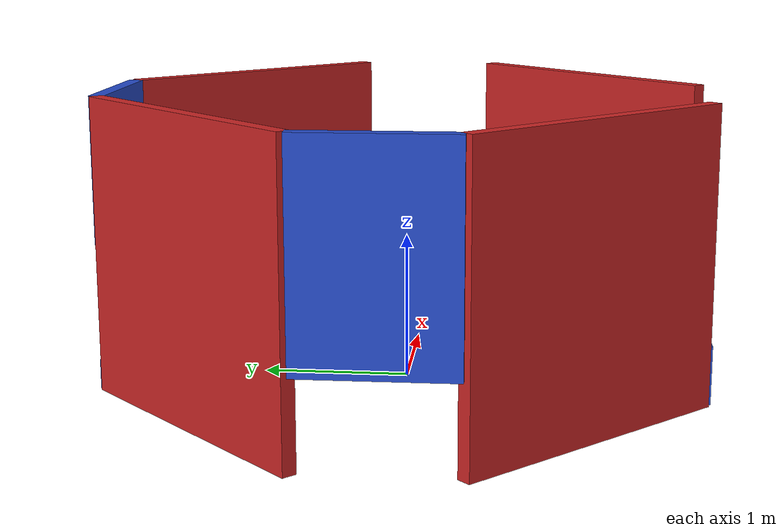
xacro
<?xml version="1.0"?>
<robot xmlns:xacro="http://www.ros.org/wiki/xacro"  name="scene">
    <xacro:property name="wall_length" value="1" />
    <xacro:property name="wall_thickness" value="0.1" />
    <xacro:property name="wall_height" value="2" />
    <xacro:property name="wall_mass" value="10" />
    <xacro:property name="wall_mass" value="10" />

    <xacro:property name="wall2_length" value="${1.5*1.414}" />

    <xacro:property name="wall_distance" value="2" />

    <xacro:property name="doore_height" value="0" />

    <xacro:property name="doors_bottom" value="0.4" />

    <xacro:property name="doorw_height" value="0.6" />

    <xacro:property name="doorn_height" value="1" />
    <xacro:property name="doorn_bottom" value="0.2" />

    <xacro:include filename="colours.xacro" />
    <xacro:include filename="inertial.xacro" />
    <xacro:include filename="gazebo.xacro" />
    <xacro:include filename="scene_core.xacro" />
</robot>

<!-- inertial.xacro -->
<robot xmlns:xacro="http://www.ros.org/wiki/xacro" >
    <!-- Specify some standard inertial calculations
         https://en.wikipedia.org/wiki/List_of_moments_of_inertia
         These make use of xacro's mathematical functionality -->
    <xacro:macro name="inertial_sphere" params="mass radius *origin">
        <inertial>
            <xacro:insert_block name="origin"/>
            <mass value="${mass}" />
            <inertia ixx="${(2/5) * mass * (radius*radius)}" ixy="0.0" ixz="0.0"
                    iyy="${(2/5) * mass * (radius*radius)}" iyz="0.0"
                    izz="${(2/5) * mass * (radius*radius)}" />
        </inertial>
    </xacro:macro>

    <xacro:macro name="inertial_box" params="mass x y z *origin">
        <inertial>
            <xacro:insert_block name="origin"/>
            <mass value="${mass}" />
            <inertia ixx="${(1/12) * mass * (y*y+z*z)}" ixy="0.0" ixz="0.0"
                    iyy="${(1/12) * mass * (x*x+z*z)}" iyz="0.0"
                    izz="${(1/12) * mass * (x*x+y*y)}" />
        </inertial>
    </xacro:macro>

    <xacro:macro name="inertial_cylinder" params="mass length radius *origin">
        <inertial>
            <xacro:insert_block name="origin"/>
            <mass value="${mass}" />
            <inertia ixx="${(1/12) * mass * (3*radius*radius + length*length)}"
                ixy="0.0" ixz="0.0"
                iyy="${(1/12) * mass * (3*radius*radius + length*length)}"
                iyz="0.0" izz="${(1/2) * mass * (radius*radius)}" />
        </inertial>
    </xacro:macro>
</robot>

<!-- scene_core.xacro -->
<robot xmlns:xacro="http://www.ros.org/wiki/xacro">

    <link name="base_link">
    </link>

    <joint name="wall_joint_se" type="fixed">
        <parent link="base_link"/>
        <child link="wall_se"/>
        <origin xyz="${1.25} -${1.25} ${wall_height/2}" rpy="0 0 ${pi/4}"/>
    </joint>
    <link name="wall_se">
        <visual>
            <origin xyz="0 0 0"/>
            <geometry>
                <box size="${wall2_length} ${wall_thickness} ${wall_height}"/>
            </geometry>
            <material name="red"/>
        </visual>
        <collision>
            <origin xyz="0 0 0"/>
            <geometry>
                <box size="${wall2_length} ${wall_thickness} ${wall_height}"/>
            </geometry>
         </collision>
        <xacro:inertial_box mass="${wall_mass}" x="${wall2_length}" y="${wall_thickness}" z="${wall_height}">
            <origin xyz="0 0 0"/>
        </xacro:inertial_box>
    </link>

    <joint name="wall_joint_s" type="fixed">
        <parent link="base_link"/>
        <child link="wall_s"/>
        <origin xyz="0 -${wall_distance} ${doors_bottom/2}" rpy="0 0 0"/>
    </joint>
    <link name="wall_s">
        <visual>
            <origin xyz="0 0 0"/>
            <geometry>
                <box size="${wall_length} ${wall_thickness} ${doors_bottom}"/>
            </geometry>
            <material name="blue"/>
        </visual>
        <collision>
            <origin xyz="0 0 0"/>
            <geometry>
                <box size="${wall_length} ${wall_thickness} ${doors_bottom}"/>
            </geometry>
         </collision>
        <xacro:inertial_box mass="${wall_mass}" x="${wall_length}" y="${wall_thickness}" z="${doors_bottom}">
            <origin xyz="0 0 0"/>
        </xacro:inertial_box>
    </link>

    <joint name="wall_joint_ne" type="fixed">
        <parent link="base_link"/>
        <child link="wall_ne"/>
        <origin xyz="${1.25} ${1.25} ${wall_height/2}" rpy="0 0 -${pi/4}"/>
    </joint>
    <link name="wall_ne">
        <visual>
            <origin xyz="0 0 0"/>
            <geometry>
                <box size="${wall2_length} ${wall_thickness} ${wall_height}"/>
            </geometry>
            <material name="red"/>
        </visual>
        <collision>
            <origin xyz="0 0 0"/>
            <geometry>
                <box size="${wall2_length} ${wall_thickness} ${wall_height}"/>
            </geometry>
         </collision>
        <xacro:inertial_box mass="${wall_mass}" x="${wall2_length}" y="${wall_thickness}" z="${wall_height}">
            <origin xyz="0 0 0"/>
        </xacro:inertial_box>
    </link>

    <joint name="wall_joint_sw" type="fixed">
        <parent link="base_link"/>
        <child link="wall_sw"/>
        <origin xyz="-${1.25} -${1.25} ${wall_height/2}" rpy="0 0 -${pi/4}"/>
    </joint>
    <link name="wall_sw">
        <visual>
            <origin xyz="0 0 0"/>
            <geometry>
                <box size="${wall2_length} ${wall_thickness} ${wall_height}"/>
            </geometry>
            <material name="red"/>
        </visual>
        <collision>
            <origin xyz="0 0 0"/>
            <geometry>
                <box size="${wall2_length} ${wall_thickness} ${wall_height}"/>
            </geometry>
         </collision>
        <xacro:inertial_box mass="${wall_mass}" x="${wall2_length}" y="${wall_thickness}" z="${wall_height}">
            <origin xyz="0 0 0"/>
        </xacro:inertial_box>
    </link>

    <joint name="wall_joint_nb" type="fixed">
        <parent link="base_link"/>
        <child link="wall_nb"/>
        <origin xyz="0 ${wall_distance} ${doorn_bottom/2}" rpy="0 0 0"/>
    </joint>
    <link name="wall_nb">
        <visual>
            <origin xyz="0 0 0"/>
            <geometry>
                <box size="${wall_length} ${wall_thickness} ${doorn_bottom}"/>
            </geometry>
            <material name="blue"/>
        </visual>
        <collision>
            <origin xyz="0 0 0"/>
            <geometry>
                <box size="${wall_length} ${wall_thickness} ${doorn_bottom}"/>
            </geometry>
         </collision>
        <xacro:inertial_box mass="${wall_mass}" x="${wall_length}" y="${wall_thickness}" z="${doorn_bottom}">
            <origin xyz="0 0 0"/>
        </xacro:inertial_box>
    </link>

    <joint name="wall_joint_nt" type="fixed">
        <parent link="base_link"/>
        <child link="wall_nt"/>
        <origin xyz="0 ${wall_distance} ${(wall_height - doorn_height)/2 + doorn_height}" rpy="0 0 0"/>
    </joint>
    <link name="wall_nt">
        <visual>
            <origin xyz="0 0 0"/>
            <geometry>
                <box size="${wall_length} ${wall_thickness} ${wall_height - doorn_height}"/>
            </geometry>
            <material name="blue"/>
        </visual>
        <collision>
            <origin xyz="0 0 0"/>
            <geometry>
                <box size="${wall_length} ${wall_thickness} ${wall_height - doorn_height}"/>
            </geometry>
         </collision>
        <xacro:inertial_box mass="${wall_mass}" x="${wall_length}" y="${wall_thickness}" z="${wall_height - doorn_height}">
            <origin xyz="0 0 0"/>
        </xacro:inertial_box>
    </link>

    <joint name="wall_joint_nw" type="fixed">
        <parent link="base_link"/>
        <child link="wall_nw"/>
        <origin xyz="-${1.25} ${1.25} ${wall_height/2}" rpy="0 0 ${pi/4}"/>
    </joint>
    <link name="wall_nw">
        <visual>
            <origin xyz="0 0 0"/>
            <geometry>
                <box size="${wall2_length} ${wall_thickness} ${wall_height}"/>
            </geometry>
            <material name="red"/>
        </visual>
        <collision>
            <origin xyz="0 0 0"/>
            <geometry>
                <box size="${wall2_length} ${wall_thickness} ${wall_height}"/>
            </geometry>
         </collision>
        <xacro:inertial_box mass="${wall_mass}" x="${wall2_length}" y="${wall_thickness}" z="${wall_height}">
            <origin xyz="0 0 0"/>
        </xacro:inertial_box>
    </link>

    <joint name="wall_joint_w" type="fixed">
        <parent link="base_link"/>
        <child link="wall_w"/>
        <origin xyz="-${wall_distance} 0 ${(wall_height - doorw_height)/2 + doorw_height}" rpy="0 0 ${pi/2}"/>
    </joint>
    <link name="wall_w">
        <visual>
            <origin xyz="0 0 0"/>
            <geometry>
                <box size="${wall_length} ${wall_thickness} ${wall_height - doorw_height}"/>
            </geometry>
            <material name="blue"/>
        </visual>
        <collision>
            <origin xyz="0 0 0"/>
            <geometry>
                <box size="${wall_length} ${wall_thickness} ${wall_height - doorw_height}"/>
            </geometry>
         </collision>
        <xacro:inertial_box mass="${wall_mass}" x="${wall_length}" y="${wall_thickness}" z="${wall_height - doorw_height}">
            <origin xyz="0 0 0"/>
        </xacro:inertial_box>
    </link>

</robot>
